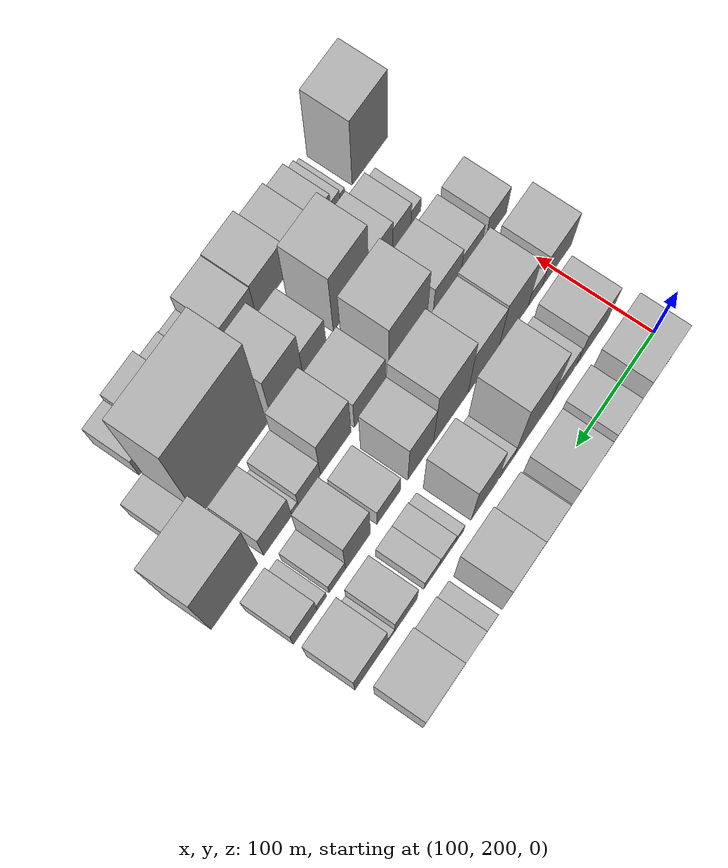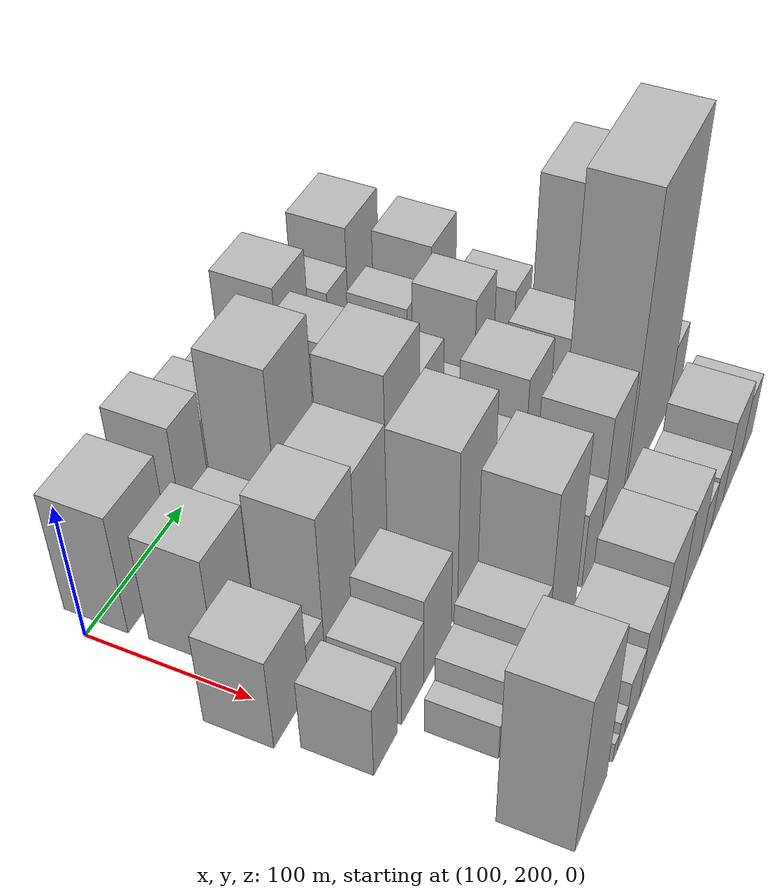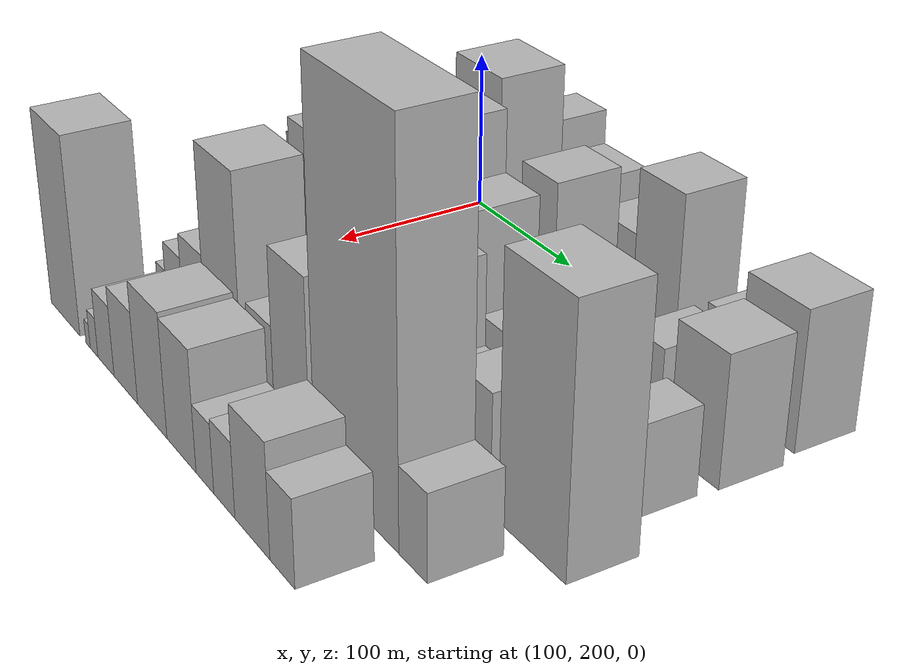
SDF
<sdf version="1.6">
 <world name="default">
  <model name="building_32">
   <static>1</static>
   <pose>100.0000 233.9088 0 0.000000 0.000000 0.000000</pose>
   <link name="link">
    <pose>0 0 45.00 0 0 0</pose>
    <collision name="collision"><geometry><box><size>40.0000 47.0325 90.0000</size></box></geometry></collision>
    <visual name="visual">
     <cast_shadows>0</cast_shadows>
     <geometry><box><size>40.0000 47.0325 90.0000</size></box></geometry>
     <material>
      <script>
       <uri>model://HANNAS_wall/materials/scripts</uri>
       <uri>model://HANNAS_wall/materials/textures</uri>
       <name>vrc/HANNAS_wall</name>
      </script>
     </material>
    </visual>
   </link>
  </model>
  <model name="building_33">
   <static>1</static>
   <pose>100.0000 267.5925 0 0.000000 0.000000 0.000000</pose>
   <link name="link">
    <pose>0 0 9.00 0 0 0</pose>
    <collision name="collision"><geometry><box><size>40.0000 8.3347 18.0000</size></box></geometry></collision>
    <visual name="visual">
     <cast_shadows>0</cast_shadows>
     <geometry><box><size>40.0000 8.3347 18.0000</size></box></geometry>
     <material>
      <script>
       <uri>model://HANNAS_wall/materials/scripts</uri>
       <uri>model://HANNAS_wall/materials/textures</uri>
       <name>vrc/HANNAS_wall</name>
      </script>
     </material>
    </visual>
   </link>
  </model>
  <model name="building_34">
   <static>1</static>
   <pose>100.0000 286.5856 0 0.000000 0.000000 0.000000</pose>
   <link name="link">
    <pose>0 0 48.00 0 0 0</pose>
    <collision name="collision"><geometry><box><size>40.0000 29.6515 96.0000</size></box></geometry></collision>
    <visual name="visual">
     <cast_shadows>0</cast_shadows>
     <geometry><box><size>40.0000 29.6515 96.0000</size></box></geometry>
     <material>
      <script>
       <uri>model://HANNAS_wall/materials/scripts</uri>
       <uri>model://HANNAS_wall/materials/textures</uri>
       <name>vrc/HANNAS_wall</name>
      </script>
     </material>
    </visual>
   </link>
  </model>
  <model name="building_35">
   <static>1</static>
   <pose>100.0000 321.0439 0 0.000000 0.000000 0.000000</pose>
   <link name="link">
    <pose>0 0 37.50 0 0 0</pose>
    <collision name="collision"><geometry><box><size>40.0000 39.2652 75.0000</size></box></geometry></collision>
    <visual name="visual">
     <cast_shadows>0</cast_shadows>
     <geometry><box><size>40.0000 39.2652 75.0000</size></box></geometry>
     <material>
      <script>
       <uri>model://HANNAS_wall/materials/scripts</uri>
       <uri>model://HANNAS_wall/materials/textures</uri>
       <name>vrc/HANNAS_wall</name>
      </script>
     </material>
    </visual>
   </link>
  </model>
  <model name="building_36">
   <static>1</static>
   <pose>100.0000 345.3460 0 0.000000 0.000000 0.000000</pose>
   <link name="link">
    <pose>0 0 10.50 0 0 0</pose>
    <collision name="collision"><geometry><box><size>40.0000 9.3389 21.0000</size></box></geometry></collision>
    <visual name="visual">
     <cast_shadows>0</cast_shadows>
     <geometry><box><size>40.0000 9.3389 21.0000</size></box></geometry>
     <material>
      <script>
       <uri>model://HANNAS_wall/materials/scripts</uri>
       <uri>model://HANNAS_wall/materials/textures</uri>
       <name>vrc/HANNAS_wall</name>
      </script>
     </material>
    </visual>
   </link>
  </model>
  <model name="building_37">
   <static>1</static>
   <pose>100.0000 368.1678 0 0.000000 0.000000 0.000000</pose>
   <link name="link">
    <pose>0 0 31.50 0 0 0</pose>
    <collision name="collision"><geometry><box><size>40.0000 36.3047 63.0000</size></box></geometry></collision>
    <visual name="visual">
     <cast_shadows>0</cast_shadows>
     <geometry><box><size>40.0000 36.3047 63.0000</size></box></geometry>
     <material>
      <script>
       <uri>model://HANNAS_wall/materials/scripts</uri>
       <uri>model://HANNAS_wall/materials/textures</uri>
       <name>vrc/HANNAS_wall</name>
      </script>
     </material>
    </visual>
   </link>
  </model>
  <model name="building_38">
   <static>1</static>
   <pose>100.0000 405.4932 0 0.000000 0.000000 0.000000</pose>
   <link name="link">
    <pose>0 0 51.00 0 0 0</pose>
    <collision name="collision"><geometry><box><size>40.0000 38.3461 102.0000</size></box></geometry></collision>
    <visual name="visual">
     <cast_shadows>0</cast_shadows>
     <geometry><box><size>40.0000 38.3461 102.0000</size></box></geometry>
     <material>
      <script>
       <uri>model://HANNAS_wall/materials/scripts</uri>
       <uri>model://HANNAS_wall/materials/textures</uri>
       <name>vrc/HANNAS_wall</name>
      </script>
     </material>
    </visual>
   </link>
  </model>
  <model name="building_39">
   <static>1</static>
   <pose>100.0000 440.5440 0 0.000000 0.000000 0.000000</pose>
   <link name="link">
    <pose>0 0 15.00 0 0 0</pose>
    <collision name="collision"><geometry><box><size>40.0000 15.7556 30.0000</size></box></geometry></collision>
    <visual name="visual">
     <cast_shadows>0</cast_shadows>
     <geometry><box><size>40.0000 15.7556 30.0000</size></box></geometry>
     <material>
      <script>
       <uri>model://HANNAS_wall/materials/scripts</uri>
       <uri>model://HANNAS_wall/materials/textures</uri>
       <name>vrc/HANNAS_wall</name>
      </script>
     </material>
    </visual>
   </link>
  </model>
  <model name="building_40">
   <static>1</static>
   <pose>100.0000 462.2266 0 0.000000 0.000000 0.000000</pose>
   <link name="link">
    <pose>0 0 25.50 0 0 0</pose>
    <collision name="collision"><geometry><box><size>40.0000 27.6096 51.0000</size></box></geometry></collision>
    <visual name="visual">
     <cast_shadows>0</cast_shadows>
     <geometry><box><size>40.0000 27.6096 51.0000</size></box></geometry>
     <material>
      <script>
       <uri>model://HANNAS_wall/materials/scripts</uri>
       <uri>model://HANNAS_wall/materials/textures</uri>
       <name>vrc/HANNAS_wall</name>
      </script>
     </material>
    </visual>
   </link>
  </model>
  <model name="building_41">
   <static>1</static>
   <pose>100.0000 498.5113 0 0.000000 0.000000 0.000000</pose>
   <link name="link">
    <pose>0 0 40.50 0 0 0</pose>
    <collision name="collision"><geometry><box><size>40.0000 44.9598 81.0000</size></box></geometry></collision>
    <visual name="visual">
     <cast_shadows>0</cast_shadows>
     <geometry><box><size>40.0000 44.9598 81.0000</size></box></geometry>
     <material>
      <script>
       <uri>model://HANNAS_wall/materials/scripts</uri>
       <uri>model://HANNAS_wall/materials/textures</uri>
       <name>vrc/HANNAS_wall</name>
      </script>
     </material>
    </visual>
   </link>
  </model>
  <model name="building_81">
   <static>1</static>
   <pose>152.0000 232.0442 0 0.000000 0.000000 0.000000</pose>
   <link name="link">
    <pose>0 0 40.50 0 0 0</pose>
    <collision name="collision"><geometry><box><size>40.0000 40.8701 81.0000</size></box></geometry></collision>
    <visual name="visual">
     <cast_shadows>0</cast_shadows>
     <geometry><box><size>40.0000 40.8701 81.0000</size></box></geometry>
     <material>
      <script>
       <uri>model://HANNAS_wall/materials/scripts</uri>
       <uri>model://HANNAS_wall/materials/textures</uri>
       <name>vrc/HANNAS_wall</name>
      </script>
     </material>
    </visual>
   </link>
  </model>
  <model name="building_82">
   <static>1</static>
   <pose>152.0000 270.8309 0 0.000000 0.000000 0.000000</pose>
   <link name="link">
    <pose>0 0 30.00 0 0 0</pose>
    <collision name="collision"><geometry><box><size>40.0000 30.7033 60.0000</size></box></geometry></collision>
    <visual name="visual">
     <cast_shadows>0</cast_shadows>
     <geometry><box><size>40.0000 30.7033 60.0000</size></box></geometry>
     <material>
      <script>
       <uri>model://HANNAS_wall/materials/scripts</uri>
       <uri>model://HANNAS_wall/materials/textures</uri>
       <name>vrc/HANNAS_wall</name>
      </script>
     </material>
    </visual>
   </link>
  </model>
  <model name="building_83">
   <static>1</static>
   <pose>152.0000 309.0000 0 0.000000 0.000000 0.000000</pose>
   <link name="link">
    <pose>0 0 72.00 0 0 0</pose>
    <collision name="collision"><geometry><box><size>40.0000 45.6350 144.0000</size></box></geometry></collision>
    <visual name="visual">
     <cast_shadows>0</cast_shadows>
     <geometry><box><size>40.0000 45.6350 144.0000</size></box></geometry>
     <material>
      <script>
       <uri>model://HANNAS_wall/materials/scripts</uri>
       <uri>model://HANNAS_wall/materials/textures</uri>
       <name>vrc/HANNAS_wall</name>
      </script>
     </material>
    </visual>
   </link>
  </model>
  <model name="building_84">
   <static>1</static>
   <pose>152.0000 340.8635 0 0.000000 0.000000 0.000000</pose>
   <link name="link">
    <pose>0 0 16.50 0 0 0</pose>
    <collision name="collision"><geometry><box><size>40.0000 18.0919 33.0000</size></box></geometry></collision>
    <visual name="visual">
     <cast_shadows>0</cast_shadows>
     <geometry><box><size>40.0000 18.0919 33.0000</size></box></geometry>
     <material>
      <script>
       <uri>model://HANNAS_wall/materials/scripts</uri>
       <uri>model://HANNAS_wall/materials/textures</uri>
       <name>vrc/HANNAS_wall</name>
      </script>
     </material>
    </visual>
   </link>
  </model>
  <model name="building_85">
   <static>1</static>
   <pose>152.0000 369.2644 0 0.000000 0.000000 0.000000</pose>
   <link name="link">
    <pose>0 0 52.50 0 0 0</pose>
    <collision name="collision"><geometry><box><size>40.0000 32.7099 105.0000</size></box></geometry></collision>
    <visual name="visual">
     <cast_shadows>0</cast_shadows>
     <geometry><box><size>40.0000 32.7099 105.0000</size></box></geometry>
     <material>
      <script>
       <uri>model://HANNAS_wall/materials/scripts</uri>
       <uri>model://HANNAS_wall/materials/textures</uri>
       <name>vrc/HANNAS_wall</name>
      </script>
     </material>
    </visual>
   </link>
  </model>
  <model name="building_86">
   <static>1</static>
   <pose>152.0000 399.7440 0 0.000000 0.000000 0.000000</pose>
   <link name="link">
    <pose>0 0 12.00 0 0 0</pose>
    <collision name="collision"><geometry><box><size>40.0000 10.2493 24.0000</size></box></geometry></collision>
    <visual name="visual">
     <cast_shadows>0</cast_shadows>
     <geometry><box><size>40.0000 10.2493 24.0000</size></box></geometry>
     <material>
      <script>
       <uri>model://HANNAS_wall/materials/scripts</uri>
       <uri>model://HANNAS_wall/materials/textures</uri>
       <name>vrc/HANNAS_wall</name>
      </script>
     </material>
    </visual>
   </link>
  </model>
  <model name="building_87">
   <static>1</static>
   <pose>152.0000 414.5112 0 0.000000 0.000000 0.000000</pose>
   <link name="link">
    <pose>0 0 16.50 0 0 0</pose>
    <collision name="collision"><geometry><box><size>40.0000 19.2852 33.0000</size></box></geometry></collision>
    <visual name="visual">
     <cast_shadows>0</cast_shadows>
     <geometry><box><size>40.0000 19.2852 33.0000</size></box></geometry>
     <material>
      <script>
       <uri>model://HANNAS_wall/materials/scripts</uri>
       <uri>model://HANNAS_wall/materials/textures</uri>
       <name>vrc/HANNAS_wall</name>
      </script>
     </material>
    </visual>
   </link>
  </model>
  <model name="building_88">
   <static>1</static>
   <pose>152.0000 433.8982 0 0.000000 0.000000 0.000000</pose>
   <link name="link">
    <pose>0 0 16.50 0 0 0</pose>
    <collision name="collision"><geometry><box><size>40.0000 19.4887 33.0000</size></box></geometry></collision>
    <visual name="visual">
     <cast_shadows>0</cast_shadows>
     <geometry><box><size>40.0000 19.4887 33.0000</size></box></geometry>
     <material>
      <script>
       <uri>model://HANNAS_wall/materials/scripts</uri>
       <uri>model://HANNAS_wall/materials/textures</uri>
       <name>vrc/HANNAS_wall</name>
      </script>
     </material>
    </visual>
   </link>
  </model>
  <model name="building_89">
   <static>1</static>
   <pose>152.0000 465.4855 0 0.000000 0.000000 0.000000</pose>
   <link name="link">
    <pose>0 0 27.00 0 0 0</pose>
    <collision name="collision"><geometry><box><size>40.0000 27.6860 54.0000</size></box></geometry></collision>
    <visual name="visual">
     <cast_shadows>0</cast_shadows>
     <geometry><box><size>40.0000 27.6860 54.0000</size></box></geometry>
     <material>
      <script>
       <uri>model://HANNAS_wall/materials/scripts</uri>
       <uri>model://HANNAS_wall/materials/textures</uri>
       <name>vrc/HANNAS_wall</name>
      </script>
     </material>
    </visual>
   </link>
  </model>
  <model name="building_90">
   <static>1</static>
   <pose>152.0000 483.6502 0 0.000000 0.000000 0.000000</pose>
   <link name="link">
    <pose>0 0 10.50 0 0 0</pose>
    <collision name="collision"><geometry><box><size>40.0000 8.6435 21.0000</size></box></geometry></collision>
    <visual name="visual">
     <cast_shadows>0</cast_shadows>
     <geometry><box><size>40.0000 8.6435 21.0000</size></box></geometry>
     <material>
      <script>
       <uri>model://HANNAS_wall/materials/scripts</uri>
       <uri>model://HANNAS_wall/materials/textures</uri>
       <name>vrc/HANNAS_wall</name>
      </script>
     </material>
    </visual>
   </link>
  </model>
  <model name="building_91">
   <static>1</static>
   <pose>152.0000 507.1634 0 0.000000 0.000000 0.000000</pose>
   <link name="link">
    <pose>0 0 37.50 0 0 0</pose>
    <collision name="collision"><geometry><box><size>40.0000 38.3828 75.0000</size></box></geometry></collision>
    <visual name="visual">
     <cast_shadows>0</cast_shadows>
     <geometry><box><size>40.0000 38.3828 75.0000</size></box></geometry>
     <material>
      <script>
       <uri>model://HANNAS_wall/materials/scripts</uri>
       <uri>model://HANNAS_wall/materials/textures</uri>
       <name>vrc/HANNAS_wall</name>
      </script>
     </material>
    </visual>
   </link>
  </model>
  <model name="building_133">
   <static>1</static>
   <pose>204.0000 197.5146 0 0.000000 0.000000 0.000000</pose>
   <link name="link">
    <pose>0 0 34.50 0 0 0</pose>
    <collision name="collision"><geometry><box><size>40.0000 38.2251 69.0000</size></box></geometry></collision>
    <visual name="visual">
     <cast_shadows>0</cast_shadows>
     <geometry><box><size>40.0000 38.2251 69.0000</size></box></geometry>
     <material>
      <script>
       <uri>model://HANNAS_wall/materials/scripts</uri>
       <uri>model://HANNAS_wall/materials/textures</uri>
       <name>vrc/HANNAS_wall</name>
      </script>
     </material>
    </visual>
   </link>
  </model>
  <model name="building_134">
   <static>1</static>
   <pose>204.0000 226.0405 0 0.000000 0.000000 0.000000</pose>
   <link name="link">
    <pose>0 0 18.00 0 0 0</pose>
    <collision name="collision"><geometry><box><size>40.0000 18.8268 36.0000</size></box></geometry></collision>
    <visual name="visual">
     <cast_shadows>0</cast_shadows>
     <geometry><box><size>40.0000 18.8268 36.0000</size></box></geometry>
     <material>
      <script>
       <uri>model://HANNAS_wall/materials/scripts</uri>
       <uri>model://HANNAS_wall/materials/textures</uri>
       <name>vrc/HANNAS_wall</name>
      </script>
     </material>
    </visual>
   </link>
  </model>
  <model name="building_135">
   <static>1</static>
   <pose>204.0000 254.4708 0 0.000000 0.000000 0.000000</pose>
   <link name="link">
    <pose>0 0 55.50 0 0 0</pose>
    <collision name="collision"><geometry><box><size>40.0000 38.0338 111.0000</size></box></geometry></collision>
    <visual name="visual">
     <cast_shadows>0</cast_shadows>
     <geometry><box><size>40.0000 38.0338 111.0000</size></box></geometry>
     <material>
      <script>
       <uri>model://HANNAS_wall/materials/scripts</uri>
       <uri>model://HANNAS_wall/materials/textures</uri>
       <name>vrc/HANNAS_wall</name>
      </script>
     </material>
    </visual>
   </link>
  </model>
  <model name="building_136">
   <static>1</static>
   <pose>204.0000 292.7972 0 0.000000 0.000000 0.000000</pose>
   <link name="link">
    <pose>0 0 52.50 0 0 0</pose>
    <collision name="collision"><geometry><box><size>40.0000 38.6189 105.0000</size></box></geometry></collision>
    <visual name="visual">
     <cast_shadows>0</cast_shadows>
     <geometry><box><size>40.0000 38.6189 105.0000</size></box></geometry>
     <material>
      <script>
       <uri>model://HANNAS_wall/materials/scripts</uri>
       <uri>model://HANNAS_wall/materials/textures</uri>
       <name>vrc/HANNAS_wall</name>
      </script>
     </material>
    </visual>
   </link>
  </model>
  <model name="building_137">
   <static>1</static>
   <pose>204.0000 333.7494 0 0.000000 0.000000 0.000000</pose>
   <link name="link">
    <pose>0 0 69.00 0 0 0</pose>
    <collision name="collision"><geometry><box><size>40.0000 43.2857 138.0000</size></box></geometry></collision>
    <visual name="visual">
     <cast_shadows>0</cast_shadows>
     <geometry><box><size>40.0000 43.2857 138.0000</size></box></geometry>
     <material>
      <script>
       <uri>model://HANNAS_wall/materials/scripts</uri>
       <uri>model://HANNAS_wall/materials/textures</uri>
       <name>vrc/HANNAS_wall</name>
      </script>
     </material>
    </visual>
   </link>
  </model>
  <model name="building_138">
   <static>1</static>
   <pose>204.0000 371.2882 0 0.000000 0.000000 0.000000</pose>
   <link name="link">
    <pose>0 0 51.00 0 0 0</pose>
    <collision name="collision"><geometry><box><size>40.0000 31.7918 102.0000</size></box></geometry></collision>
    <visual name="visual">
     <cast_shadows>0</cast_shadows>
     <geometry><box><size>40.0000 31.7918 102.0000</size></box></geometry>
     <material>
      <script>
       <uri>model://HANNAS_wall/materials/scripts</uri>
       <uri>model://HANNAS_wall/materials/textures</uri>
       <name>vrc/HANNAS_wall</name>
      </script>
     </material>
    </visual>
   </link>
  </model>
  <model name="building_139">
   <static>1</static>
   <pose>204.0000 410.5119 0 0.000000 0.000000 0.000000</pose>
   <link name="link">
    <pose>0 0 24.00 0 0 0</pose>
    <collision name="collision"><geometry><box><size>40.0000 28.6556 48.0000</size></box></geometry></collision>
    <visual name="visual">
     <cast_shadows>0</cast_shadows>
     <geometry><box><size>40.0000 28.6556 48.0000</size></box></geometry>
     <material>
      <script>
       <uri>model://HANNAS_wall/materials/scripts</uri>
       <uri>model://HANNAS_wall/materials/textures</uri>
       <name>vrc/HANNAS_wall</name>
      </script>
     </material>
    </visual>
   </link>
  </model>
  <model name="building_140">
   <static>1</static>
   <pose>204.0000 447.7935 0 0.000000 0.000000 0.000000</pose>
   <link name="link">
    <pose>0 0 46.50 0 0 0</pose>
    <collision name="collision"><geometry><box><size>40.0000 29.9076 93.0000</size></box></geometry></collision>
    <visual name="visual">
     <cast_shadows>0</cast_shadows>
     <geometry><box><size>40.0000 29.9076 93.0000</size></box></geometry>
     <material>
      <script>
       <uri>model://HANNAS_wall/materials/scripts</uri>
       <uri>model://HANNAS_wall/materials/textures</uri>
       <name>vrc/HANNAS_wall</name>
      </script>
     </material>
    </visual>
   </link>
  </model>
  <model name="building_141">
   <static>1</static>
   <pose>204.0000 472.6382 0 0.000000 0.000000 0.000000</pose>
   <link name="link">
    <pose>0 0 16.50 0 0 0</pose>
    <collision name="collision"><geometry><box><size>40.0000 19.7817 33.0000</size></box></geometry></collision>
    <visual name="visual">
     <cast_shadows>0</cast_shadows>
     <geometry><box><size>40.0000 19.7817 33.0000</size></box></geometry>
     <material>
      <script>
       <uri>model://HANNAS_wall/materials/scripts</uri>
       <uri>model://HANNAS_wall/materials/textures</uri>
       <name>vrc/HANNAS_wall</name>
      </script>
     </material>
    </visual>
   </link>
  </model>
  <model name="building_142">
   <static>1</static>
   <pose>204.0000 491.1997 0 0.000000 0.000000 0.000000</pose>
   <link name="link">
    <pose>0 0 12.00 0 0 0</pose>
    <collision name="collision"><geometry><box><size>40.0000 11.3414 24.0000</size></box></geometry></collision>
    <visual name="visual">
     <cast_shadows>0</cast_shadows>
     <geometry><box><size>40.0000 11.3414 24.0000</size></box></geometry>
     <material>
      <script>
       <uri>model://HANNAS_wall/materials/scripts</uri>
       <uri>model://HANNAS_wall/materials/textures</uri>
       <name>vrc/HANNAS_wall</name>
      </script>
     </material>
    </visual>
   </link>
  </model>
  <model name="building_143">
   <static>1</static>
   <pose>204.0000 510.8528 0 0.000000 0.000000 0.000000</pose>
   <link name="link">
    <pose>0 0 25.50 0 0 0</pose>
    <collision name="collision"><geometry><box><size>40.0000 27.9648 51.0000</size></box></geometry></collision>
    <visual name="visual">
     <cast_shadows>0</cast_shadows>
     <geometry><box><size>40.0000 27.9648 51.0000</size></box></geometry>
     <material>
      <script>
       <uri>model://HANNAS_wall/materials/scripts</uri>
       <uri>model://HANNAS_wall/materials/textures</uri>
       <name>vrc/HANNAS_wall</name>
      </script>
     </material>
    </visual>
   </link>
  </model>
  <model name="building_187">
   <static>1</static>
   <pose>256.0000 198.1833 0 0.000000 0.000000 0.000000</pose>
   <link name="link">
    <pose>0 0 27.00 0 0 0</pose>
    <collision name="collision"><geometry><box><size>40.0000 27.5471 54.0000</size></box></geometry></collision>
    <visual name="visual">
     <cast_shadows>0</cast_shadows>
     <geometry><box><size>40.0000 27.5471 54.0000</size></box></geometry>
     <material>
      <script>
       <uri>model://HANNAS_wall/materials/scripts</uri>
       <uri>model://HANNAS_wall/materials/textures</uri>
       <name>vrc/HANNAS_wall</name>
      </script>
     </material>
    </visual>
   </link>
  </model>
  <model name="building_188">
   <static>1</static>
   <pose>256.0000 230.7472 0 0.000000 0.000000 0.000000</pose>
   <link name="link">
    <pose>0 0 25.50 0 0 0</pose>
    <collision name="collision"><geometry><box><size>40.0000 27.5808 51.0000</size></box></geometry></collision>
    <visual name="visual">
     <cast_shadows>0</cast_shadows>
     <geometry><box><size>40.0000 27.5808 51.0000</size></box></geometry>
     <material>
      <script>
       <uri>model://HANNAS_wall/materials/scripts</uri>
       <uri>model://HANNAS_wall/materials/textures</uri>
       <name>vrc/HANNAS_wall</name>
      </script>
     </material>
    </visual>
   </link>
  </model>
  <model name="building_189">
   <static>1</static>
   <pose>256.0000 262.0335 0 0.000000 0.000000 0.000000</pose>
   <link name="link">
    <pose>0 0 33.00 0 0 0</pose>
    <collision name="collision"><geometry><box><size>40.0000 34.9917 66.0000</size></box></geometry></collision>
    <visual name="visual">
     <cast_shadows>0</cast_shadows>
     <geometry><box><size>40.0000 34.9917 66.0000</size></box></geometry>
     <material>
      <script>
       <uri>model://HANNAS_wall/materials/scripts</uri>
       <uri>model://HANNAS_wall/materials/textures</uri>
       <name>vrc/HANNAS_wall</name>
      </script>
     </material>
    </visual>
   </link>
  </model>
  <model name="building_190">
   <static>1</static>
   <pose>256.0000 311.3335 0 0.000000 0.000000 0.000000</pose>
   <link name="link">
    <pose>0 0 64.50 0 0 0</pose>
    <collision name="collision"><geometry><box><size>40.0000 47.6083 129.0000</size></box></geometry></collision>
    <visual name="visual">
     <cast_shadows>0</cast_shadows>
     <geometry><box><size>40.0000 47.6083 129.0000</size></box></geometry>
     <material>
      <script>
       <uri>model://HANNAS_wall/materials/scripts</uri>
       <uri>model://HANNAS_wall/materials/textures</uri>
       <name>vrc/HANNAS_wall</name>
      </script>
     </material>
    </visual>
   </link>
  </model>
  <model name="building_191">
   <static>1</static>
   <pose>256.0000 358.2334 0 0.000000 0.000000 0.000000</pose>
   <link name="link">
    <pose>0 0 34.50 0 0 0</pose>
    <collision name="collision"><geometry><box><size>40.0000 38.1916 69.0000</size></box></geometry></collision>
    <visual name="visual">
     <cast_shadows>0</cast_shadows>
     <geometry><box><size>40.0000 38.1916 69.0000</size></box></geometry>
     <material>
      <script>
       <uri>model://HANNAS_wall/materials/scripts</uri>
       <uri>model://HANNAS_wall/materials/textures</uri>
       <name>vrc/HANNAS_wall</name>
      </script>
     </material>
    </visual>
   </link>
  </model>
  <model name="building_192">
   <static>1</static>
   <pose>256.0000 399.9504 0 0.000000 0.000000 0.000000</pose>
   <link name="link">
    <pose>0 0 48.00 0 0 0</pose>
    <collision name="collision"><geometry><box><size>40.0000 37.2423 96.0000</size></box></geometry></collision>
    <visual name="visual">
     <cast_shadows>0</cast_shadows>
     <geometry><box><size>40.0000 37.2423 96.0000</size></box></geometry>
     <material>
      <script>
       <uri>model://HANNAS_wall/materials/scripts</uri>
       <uri>model://HANNAS_wall/materials/textures</uri>
       <name>vrc/HANNAS_wall</name>
      </script>
     </material>
    </visual>
   </link>
  </model>
  <model name="building_193">
   <static>1</static>
   <pose>256.0000 431.9224 0 0.000000 0.000000 0.000000</pose>
   <link name="link">
    <pose>0 0 22.50 0 0 0</pose>
    <collision name="collision"><geometry><box><size>40.0000 26.7017 45.0000</size></box></geometry></collision>
    <visual name="visual">
     <cast_shadows>0</cast_shadows>
     <geometry><box><size>40.0000 26.7017 45.0000</size></box></geometry>
     <material>
      <script>
       <uri>model://HANNAS_wall/materials/scripts</uri>
       <uri>model://HANNAS_wall/materials/textures</uri>
       <name>vrc/HANNAS_wall</name>
      </script>
     </material>
    </visual>
   </link>
  </model>
  <model name="building_194">
   <static>1</static>
   <pose>256.0000 449.3181 0 0.000000 0.000000 0.000000</pose>
   <link name="link">
    <pose>0 0 9.00 0 0 0</pose>
    <collision name="collision"><geometry><box><size>40.0000 8.0899 18.0000</size></box></geometry></collision>
    <visual name="visual">
     <cast_shadows>0</cast_shadows>
     <geometry><box><size>40.0000 8.0899 18.0000</size></box></geometry>
     <material>
      <script>
       <uri>model://HANNAS_wall/materials/scripts</uri>
       <uri>model://HANNAS_wall/materials/textures</uri>
       <name>vrc/HANNAS_wall</name>
      </script>
     </material>
    </visual>
   </link>
  </model>
  <model name="building_195">
   <static>1</static>
   <pose>256.0000 470.1345 0 0.000000 0.000000 0.000000</pose>
   <link name="link">
    <pose>0 0 33.00 0 0 0</pose>
    <collision name="collision"><geometry><box><size>40.0000 33.5428 66.0000</size></box></geometry></collision>
    <visual name="visual">
     <cast_shadows>0</cast_shadows>
     <geometry><box><size>40.0000 33.5428 66.0000</size></box></geometry>
     <material>
      <script>
       <uri>model://HANNAS_wall/materials/scripts</uri>
       <uri>model://HANNAS_wall/materials/textures</uri>
       <name>vrc/HANNAS_wall</name>
      </script>
     </material>
    </visual>
   </link>
  </model>
  <model name="building_196">
   <static>1</static>
   <pose>256.0000 521.2269 0 0.000000 0.000000 0.000000</pose>
   <link name="link">
    <pose>0 0 72.00 0 0 0</pose>
    <collision name="collision"><geometry><box><size>40.0000 54.6420 144.0000</size></box></geometry></collision>
    <visual name="visual">
     <cast_shadows>0</cast_shadows>
     <geometry><box><size>40.0000 54.6420 144.0000</size></box></geometry>
     <material>
      <script>
       <uri>model://HANNAS_wall/materials/scripts</uri>
       <uri>model://HANNAS_wall/materials/textures</uri>
       <name>vrc/HANNAS_wall</name>
      </script>
     </material>
    </visual>
   </link>
  </model>
  <model name="building_235">
   <static>1</static>
   <pose>308.0000 224.4648 0 0.000000 0.000000 0.000000</pose>
   <link name="link">
    <pose>0 0 13.50 0 0 0</pose>
    <collision name="collision"><geometry><box><size>40.0000 12.6738 27.0000</size></box></geometry></collision>
    <visual name="visual">
     <cast_shadows>0</cast_shadows>
     <geometry><box><size>40.0000 12.6738 27.0000</size></box></geometry>
     <material>
      <script>
       <uri>model://HANNAS_wall/materials/scripts</uri>
       <uri>model://HANNAS_wall/materials/textures</uri>
       <name>vrc/HANNAS_wall</name>
      </script>
     </material>
    </visual>
   </link>
  </model>
  <model name="building_236">
   <static>1</static>
   <pose>308.0000 242.3809 0 0.000000 0.000000 0.000000</pose>
   <link name="link">
    <pose>0 0 22.50 0 0 0</pose>
    <collision name="collision"><geometry><box><size>40.0000 23.1586 45.0000</size></box></geometry></collision>
    <visual name="visual">
     <cast_shadows>0</cast_shadows>
     <geometry><box><size>40.0000 23.1586 45.0000</size></box></geometry>
     <material>
      <script>
       <uri>model://HANNAS_wall/materials/scripts</uri>
       <uri>model://HANNAS_wall/materials/textures</uri>
       <name>vrc/HANNAS_wall</name>
      </script>
     </material>
    </visual>
   </link>
  </model>
  <model name="building_237">
   <static>1</static>
   <pose>308.0000 269.0796 0 0.000000 0.000000 0.000000</pose>
   <link name="link">
    <pose>0 0 30.00 0 0 0</pose>
    <collision name="collision"><geometry><box><size>40.0000 30.2389 60.0000</size></box></geometry></collision>
    <visual name="visual">
     <cast_shadows>0</cast_shadows>
     <geometry><box><size>40.0000 30.2389 60.0000</size></box></geometry>
     <material>
      <script>
       <uri>model://HANNAS_wall/materials/scripts</uri>
       <uri>model://HANNAS_wall/materials/textures</uri>
       <name>vrc/HANNAS_wall</name>
      </script>
     </material>
    </visual>
   </link>
  </model>
  <model name="building_238">
   <static>1</static>
   <pose>308.0000 306.3979 0 0.000000 0.000000 0.000000</pose>
   <link name="link">
    <pose>0 0 63.00 0 0 0</pose>
    <collision name="collision"><geometry><box><size>40.0000 44.3977 126.0000</size></box></geometry></collision>
    <visual name="visual">
     <cast_shadows>0</cast_shadows>
     <geometry><box><size>40.0000 44.3977 126.0000</size></box></geometry>
     <material>
      <script>
       <uri>model://HANNAS_wall/materials/scripts</uri>
       <uri>model://HANNAS_wall/materials/textures</uri>
       <name>vrc/HANNAS_wall</name>
      </script>
     </material>
    </visual>
   </link>
  </model>
  <model name="building_239">
   <static>1</static>
   <pose>308.0000 351.9282 0 0.000000 0.000000 0.000000</pose>
   <link name="link">
    <pose>0 0 28.50 0 0 0</pose>
    <collision name="collision"><geometry><box><size>40.0000 28.6629 57.0000</size></box></geometry></collision>
    <visual name="visual">
     <cast_shadows>0</cast_shadows>
     <geometry><box><size>40.0000 28.6629 57.0000</size></box></geometry>
     <material>
      <script>
       <uri>model://HANNAS_wall/materials/scripts</uri>
       <uri>model://HANNAS_wall/materials/textures</uri>
       <name>vrc/HANNAS_wall</name>
      </script>
     </material>
    </visual>
   </link>
  </model>
  <model name="building_240">
   <static>1</static>
   <pose>308.0000 385.4977 0 0.000000 0.000000 0.000000</pose>
   <link name="link">
    <pose>0 0 51.00 0 0 0</pose>
    <collision name="collision"><geometry><box><size>40.0000 38.4762 102.0000</size></box></geometry></collision>
    <visual name="visual">
     <cast_shadows>0</cast_shadows>
     <geometry><box><size>40.0000 38.4762 102.0000</size></box></geometry>
     <material>
      <script>
       <uri>model://HANNAS_wall/materials/scripts</uri>
       <uri>model://HANNAS_wall/materials/textures</uri>
       <name>vrc/HANNAS_wall</name>
      </script>
     </material>
    </visual>
   </link>
  </model>
  <model name="building_241">
   <static>1</static>
   <pose>308.0000 450.5781 0 0.000000 0.000000 0.000000</pose>
   <link name="link">
    <pose>0 0 108.00 0 0 0</pose>
    <collision name="collision"><geometry><box><size>40.0000 81.6846 216.0000</size></box></geometry></collision>
    <visual name="visual">
     <cast_shadows>0</cast_shadows>
     <geometry><box><size>40.0000 81.6846 216.0000</size></box></geometry>
     <material>
      <script>
       <uri>model://HANNAS_wall/materials/scripts</uri>
       <uri>model://HANNAS_wall/materials/textures</uri>
       <name>vrc/HANNAS_wall</name>
      </script>
     </material>
    </visual>
   </link>
  </model>
  <model name="building_242">
   <static>1</static>
   <pose>308.0000 504.0281 0 0.000000 0.000000 0.000000</pose>
   <link name="link">
    <pose>0 0 24.00 0 0 0</pose>
    <collision name="collision"><geometry><box><size>40.0000 25.2155 48.0000</size></box></geometry></collision>
    <visual name="visual">
     <cast_shadows>0</cast_shadows>
     <geometry><box><size>40.0000 25.2155 48.0000</size></box></geometry>
     <material>
      <script>
       <uri>model://HANNAS_wall/materials/scripts</uri>
       <uri>model://HANNAS_wall/materials/textures</uri>
       <name>vrc/HANNAS_wall</name>
      </script>
     </material>
    </visual>
   </link>
  </model>
  <model name="building_286">
   <static>1</static>
   <pose>360.0000 207.8466 0 0.000000 0.000000 0.000000</pose>
   <link name="link">
    <pose>0 0 60.00 0 0 0</pose>
    <collision name="collision"><geometry><box><size>40.0000 44.9338 120.0000</size></box></geometry></collision>
    <visual name="visual">
     <cast_shadows>0</cast_shadows>
     <geometry><box><size>40.0000 44.9338 120.0000</size></box></geometry>
     <material>
      <script>
       <uri>model://HANNAS_wall/materials/scripts</uri>
       <uri>model://HANNAS_wall/materials/textures</uri>
       <name>vrc/HANNAS_wall</name>
      </script>
     </material>
    </visual>
   </link>
  </model>
  <model name="building_287">
   <static>1</static>
   <pose>360.0000 242.5338 0 0.000000 0.000000 0.000000</pose>
   <link name="link">
    <pose>0 0 7.50 0 0 0</pose>
    <collision name="collision"><geometry><box><size>40.0000 6.4406 15.0000</size></box></geometry></collision>
    <visual name="visual">
     <cast_shadows>0</cast_shadows>
     <geometry><box><size>40.0000 6.4406 15.0000</size></box></geometry>
     <material>
      <script>
       <uri>model://HANNAS_wall/materials/scripts</uri>
       <uri>model://HANNAS_wall/materials/textures</uri>
       <name>vrc/HANNAS_wall</name>
      </script>
     </material>
    </visual>
   </link>
  </model>
  <model name="building_288">
   <static>1</static>
   <pose>360.0000 251.3650 0 0.000000 0.000000 0.000000</pose>
   <link name="link">
    <pose>0 0 12.00 0 0 0</pose>
    <collision name="collision"><geometry><box><size>40.0000 11.2217 24.0000</size></box></geometry></collision>
    <visual name="visual">
     <cast_shadows>0</cast_shadows>
     <geometry><box><size>40.0000 11.2217 24.0000</size></box></geometry>
     <material>
      <script>
       <uri>model://HANNAS_wall/materials/scripts</uri>
       <uri>model://HANNAS_wall/materials/textures</uri>
       <name>vrc/HANNAS_wall</name>
      </script>
     </material>
    </visual>
   </link>
  </model>
  <model name="building_289">
   <static>1</static>
   <pose>360.0000 268.5240 0 0.000000 0.000000 0.000000</pose>
   <link name="link">
    <pose>0 0 21.00 0 0 0</pose>
    <collision name="collision"><geometry><box><size>40.0000 23.0963 42.0000</size></box></geometry></collision>
    <visual name="visual">
     <cast_shadows>0</cast_shadows>
     <geometry><box><size>40.0000 23.0963 42.0000</size></box></geometry>
     <material>
      <script>
       <uri>model://HANNAS_wall/materials/scripts</uri>
       <uri>model://HANNAS_wall/materials/textures</uri>
       <name>vrc/HANNAS_wall</name>
      </script>
     </material>
    </visual>
   </link>
  </model>
  <model name="building_290">
   <static>1</static>
   <pose>360.0000 296.1572 0 0.000000 0.000000 0.000000</pose>
   <link name="link">
    <pose>0 0 27.00 0 0 0</pose>
    <collision name="collision"><geometry><box><size>40.0000 32.1701 54.0000</size></box></geometry></collision>
    <visual name="visual">
     <cast_shadows>0</cast_shadows>
     <geometry><box><size>40.0000 32.1701 54.0000</size></box></geometry>
     <material>
      <script>
       <uri>model://HANNAS_wall/materials/scripts</uri>
       <uri>model://HANNAS_wall/materials/textures</uri>
       <name>vrc/HANNAS_wall</name>
      </script>
     </material>
    </visual>
   </link>
  </model>
  <model name="building_291">
   <static>1</static>
   <pose>360.0000 331.1345 0 0.000000 0.000000 0.000000</pose>
   <link name="link">
    <pose>0 0 36.00 0 0 0</pose>
    <collision name="collision"><geometry><box><size>40.0000 37.7845 72.0000</size></box></geometry></collision>
    <visual name="visual">
     <cast_shadows>0</cast_shadows>
     <geometry><box><size>40.0000 37.7845 72.0000</size></box></geometry>
     <material>
      <script>
       <uri>model://HANNAS_wall/materials/scripts</uri>
       <uri>model://HANNAS_wall/materials/textures</uri>
       <name>vrc/HANNAS_wall</name>
      </script>
     </material>
    </visual>
   </link>
  </model>
  <model name="building_292">
   <static>1</static>
   <pose>360.0000 367.5963 0 0.000000 0.000000 0.000000</pose>
   <link name="link">
    <pose>0 0 34.50 0 0 0</pose>
    <collision name="collision"><geometry><box><size>40.0000 35.1391 69.0000</size></box></geometry></collision>
    <visual name="visual">
     <cast_shadows>0</cast_shadows>
     <geometry><box><size>40.0000 35.1391 69.0000</size></box></geometry>
     <material>
      <script>
       <uri>model://HANNAS_wall/materials/scripts</uri>
       <uri>model://HANNAS_wall/materials/textures</uri>
       <name>vrc/HANNAS_wall</name>
      </script>
     </material>
    </visual>
   </link>
  </model>
  <model name="building_293">
   <static>1</static>
   <pose>360.0000 395.3880 0 0.000000 0.000000 0.000000</pose>
   <link name="link">
    <pose>0 0 19.50 0 0 0</pose>
    <collision name="collision"><geometry><box><size>40.0000 20.4442 39.0000</size></box></geometry></collision>
    <visual name="visual">
     <cast_shadows>0</cast_shadows>
     <geometry><box><size>40.0000 20.4442 39.0000</size></box></geometry>
     <material>
      <script>
       <uri>model://HANNAS_wall/materials/scripts</uri>
       <uri>model://HANNAS_wall/materials/textures</uri>
       <name>vrc/HANNAS_wall</name>
      </script>
     </material>
    </visual>
   </link>
  </model>
  <model name="building_294">
   <static>1</static>
   <pose>360.0000 417.2693 0 0.000000 0.000000 0.000000</pose>
   <link name="link">
    <pose>0 0 21.00 0 0 0</pose>
    <collision name="collision"><geometry><box><size>40.0000 23.3183 42.0000</size></box></geometry></collision>
    <visual name="visual">
     <cast_shadows>0</cast_shadows>
     <geometry><box><size>40.0000 23.3183 42.0000</size></box></geometry>
     <material>
      <script>
       <uri>model://HANNAS_wall/materials/scripts</uri>
       <uri>model://HANNAS_wall/materials/textures</uri>
       <name>vrc/HANNAS_wall</name>
      </script>
     </material>
    </visual>
   </link>
  </model>
  <model name="building_295">
   <static>1</static>
   <pose>360.0000 447.2764 0 0.000000 0.000000 0.000000</pose>
   <link name="link">
    <pose>0 0 31.50 0 0 0</pose>
    <collision name="collision"><geometry><box><size>40.0000 36.6959 63.0000</size></box></geometry></collision>
    <visual name="visual">
     <cast_shadows>0</cast_shadows>
     <geometry><box><size>40.0000 36.6959 63.0000</size></box></geometry>
     <material>
      <script>
       <uri>model://HANNAS_wall/materials/scripts</uri>
       <uri>model://HANNAS_wall/materials/textures</uri>
       <name>vrc/HANNAS_wall</name>
      </script>
     </material>
    </visual>
   </link>
  </model>
  <model name="building_296">
   <static>1</static>
   <pose>360.0000 477.9449 0 0.000000 0.000000 0.000000</pose>
   <link name="link">
    <pose>0 0 24.00 0 0 0</pose>
    <collision name="collision"><geometry><box><size>40.0000 24.6411 48.0000</size></box></geometry></collision>
    <visual name="visual">
     <cast_shadows>0</cast_shadows>
     <geometry><box><size>40.0000 24.6411 48.0000</size></box></geometry>
     <material>
      <script>
       <uri>model://HANNAS_wall/materials/scripts</uri>
       <uri>model://HANNAS_wall/materials/textures</uri>
       <name>vrc/HANNAS_wall</name>
      </script>
     </material>
    </visual>
   </link>
  </model>
 </world>
</sdf>
